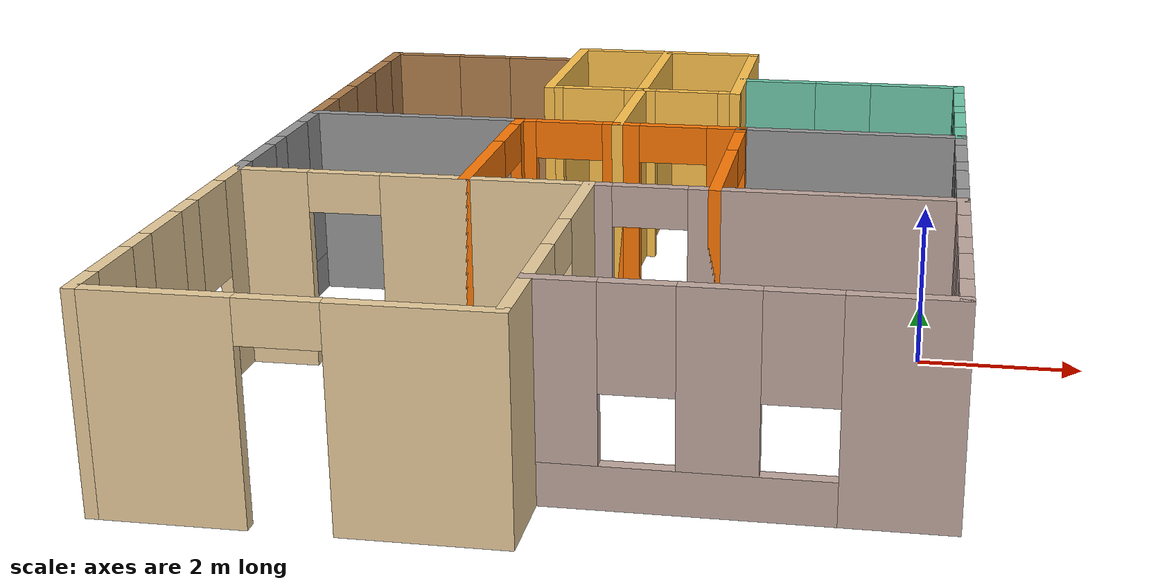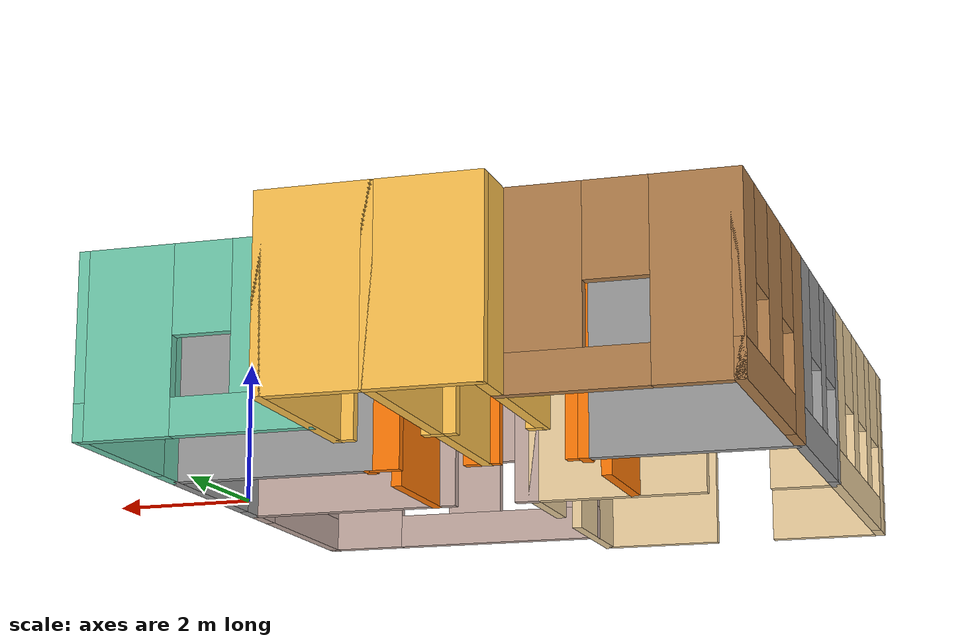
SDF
<?xml version='1.0'?>
<sdf version='1.6'>
  <model name='dd_home_add_door'>
    <pose frame=''>-3.941 0.333 0 0 -0 0</pose>
    <link name='Wall_0'>
      <pose frame=''>-2.175 -5.9 0 0 -0 3.14159</pose>
      <visual name='Wall_0_Visual_0'>
        <pose frame=''>-1.322 0 1.25 0 -0 0</pose>
        <geometry>
          <box>
            <size>1.856 0.15 2.5</size>
          </box>
        </geometry>
        <material>
          <script>
            <uri>file://media/materials/scripts/gazebo.material</uri>
            <name>Gazebo/Grey</name>
          </script>
          <ambient>0.921569 0.807843 0.615686 1</ambient>
        </material>
        <meta>
          <layer>0</layer>
        </meta>
      </visual>
      <collision name='Wall_0_Collision_0'>
        <geometry>
          <box>
            <size>1.856 0.15 2.5</size>
          </box>
        </geometry>
        <pose frame=''>-1.322 0 1.25 0 -0 0</pose>
      </collision>
      <visual name='Wall_0_Visual_1'>
        <pose frame=''>1.378 0 1.25 0 -0 0</pose>
        <geometry>
          <box>
            <size>1.744 0.15 2.5</size>
          </box>
        </geometry>
        <material>
          <script>
            <uri>file://media/materials/scripts/gazebo.material</uri>
            <name>Gazebo/Grey</name>
          </script>
          <ambient>0.921569 0.807843 0.615686 1</ambient>
        </material>
        <meta>
          <layer>0</layer>
        </meta>
      </visual>
      <collision name='Wall_0_Collision_1'>
        <geometry>
          <box>
            <size>1.744 0.15 2.5</size>
          </box>
        </geometry>
        <pose frame=''>1.378 0 1.25 0 -0 0</pose>
      </collision>
      <visual name='Wall_0_Visual_2'>
        <pose frame=''>0.056 0 2.25 0 -0 0</pose>
        <geometry>
          <box>
            <size>0.9 0.15 0.5</size>
          </box>
        </geometry>
        <material>
          <script>
            <uri>file://media/materials/scripts/gazebo.material</uri>
            <name>Gazebo/Grey</name>
          </script>
          <ambient>0.921569 0.807843 0.615686 1</ambient>
        </material>
        <meta>
          <layer>0</layer>
        </meta>
      </visual>
      <collision name='Wall_0_Collision_2'>
        <geometry>
          <box>
            <size>0.9 0.15 0.5</size>
          </box>
        </geometry>
        <pose frame=''>0.056 0 2.25 0 -0 0</pose>
      </collision>
    </link>
    <link name='Wall_1'>
      <pose frame=''>-4.35 -3.725 0 0 -0 1.5708</pose>
      <visual name='Wall_1_Visual_0'>
        <pose frame=''>-1.987 0 1.25 0 -0 0</pose>
        <geometry>
          <box>
            <size>0.526 0.15 2.5</size>
          </box>
        </geometry>
        <material>
          <script>
            <uri>file://media/materials/scripts/gazebo.material</uri>
            <name>Gazebo/Grey</name>
          </script>
          <ambient>0.921569 0.807843 0.615686 1</ambient>
        </material>
        <meta>
          <layer>0</layer>
        </meta>
      </visual>
      <collision name='Wall_1_Collision_0'>
        <geometry>
          <box>
            <size>0.526 0.15 2.5</size>
          </box>
        </geometry>
        <pose frame=''>-1.987 0 1.25 0 -0 0</pose>
      </collision>
      <visual name='Wall_1_Visual_1'>
        <pose frame=''>0.263 0 0.25 0 -0 0</pose>
        <geometry>
          <box>
            <size>3.974 0.15 0.5</size>
          </box>
        </geometry>
        <material>
          <script>
            <uri>file://media/materials/scripts/gazebo.material</uri>
            <name>Gazebo/Grey</name>
          </script>
          <ambient>0.921569 0.807843 0.615686 1</ambient>
        </material>
        <meta>
          <layer>0</layer>
        </meta>
      </visual>
      <collision name='Wall_1_Collision_1'>
        <geometry>
          <box>
            <size>3.974 0.15 0.5</size>
          </box>
        </geometry>
        <pose frame=''>0.263 0 0.25 0 -0 0</pose>
      </collision>
      <visual name='Wall_1_Visual_2'>
        <pose frame=''>-0.6915 0 1.5 0 -0 0</pose>
        <geometry>
          <box>
            <size>0.465 0.15 2</size>
          </box>
        </geometry>
        <material>
          <script>
            <uri>file://media/materials/scripts/gazebo.material</uri>
            <name>Gazebo/Grey</name>
          </script>
          <ambient>0.921569 0.807843 0.615686 1</ambient>
        </material>
        <meta>
          <layer>0</layer>
        </meta>
      </visual>
      <collision name='Wall_1_Collision_2'>
        <geometry>
          <box>
            <size>0.465 0.15 2</size>
          </box>
        </geometry>
        <pose frame=''>-0.6915 0 1.5 0 -0 0</pose>
      </collision>
      <visual name='Wall_1_Visual_3'>
        <pose frame=''>0.5735 0 1.5 0 -0 0</pose>
        <geometry>
          <box>
            <size>0.465 0.15 2</size>
          </box>
        </geometry>
        <material>
          <script>
            <uri>file://media/materials/scripts/gazebo.material</uri>
            <name>Gazebo/Grey</name>
          </script>
          <ambient>0.921569 0.807843 0.615686 1</ambient>
        </material>
        <meta>
          <layer>0</layer>
        </meta>
      </visual>
      <collision name='Wall_1_Collision_3'>
        <geometry>
          <box>
            <size>0.465 0.15 2</size>
          </box>
        </geometry>
        <pose frame=''>0.5735 0 1.5 0 -0 0</pose>
      </collision>
      <visual name='Wall_1_Visual_4'>
        <pose frame=''>1.928 0 1.5 0 -0 0</pose>
        <geometry>
          <box>
            <size>0.644 0.15 2</size>
          </box>
        </geometry>
        <material>
          <script>
            <uri>file://media/materials/scripts/gazebo.material</uri>
            <name>Gazebo/Grey</name>
          </script>
          <ambient>0.921569 0.807843 0.615686 1</ambient>
        </material>
        <meta>
          <layer>0</layer>
        </meta>
      </visual>
      <collision name='Wall_1_Collision_4'>
        <geometry>
          <box>
            <size>0.644 0.15 2</size>
          </box>
        </geometry>
        <pose frame=''>1.928 0 1.5 0 -0 0</pose>
      </collision>
      <visual name='Wall_1_Visual_5'>
        <pose frame=''>-1.324 0 1.9 0 -0 0</pose>
        <geometry>
          <box>
            <size>0.8 0.15 1.2</size>
          </box>
        </geometry>
        <material>
          <script>
            <uri>file://media/materials/scripts/gazebo.material</uri>
            <name>Gazebo/Grey</name>
          </script>
          <ambient>0.921569 0.807843 0.615686 1</ambient>
        </material>
        <meta>
          <layer>0</layer>
        </meta>
      </visual>
      <collision name='Wall_1_Collision_5'>
        <geometry>
          <box>
            <size>0.8 0.15 1.2</size>
          </box>
        </geometry>
        <pose frame=''>-1.324 0 1.9 0 -0 0</pose>
      </collision>
      <visual name='Wall_1_Visual_6'>
        <pose frame=''>-0.059 0 1.9 0 -0 0</pose>
        <geometry>
          <box>
            <size>0.8 0.15 1.2</size>
          </box>
        </geometry>
        <material>
          <script>
            <uri>file://media/materials/scripts/gazebo.material</uri>
            <name>Gazebo/Grey</name>
          </script>
          <ambient>0.921569 0.807843 0.615686 1</ambient>
        </material>
        <meta>
          <layer>0</layer>
        </meta>
      </visual>
      <collision name='Wall_1_Collision_6'>
        <geometry>
          <box>
            <size>0.8 0.15 1.2</size>
          </box>
        </geometry>
        <pose frame=''>-0.059 0 1.9 0 -0 0</pose>
      </collision>
      <visual name='Wall_1_Visual_7'>
        <pose frame=''>1.206 0 1.9 0 -0 0</pose>
        <geometry>
          <box>
            <size>0.8 0.15 1.2</size>
          </box>
        </geometry>
        <material>
          <script>
            <uri>file://media/materials/scripts/gazebo.material</uri>
            <name>Gazebo/Grey</name>
          </script>
          <ambient>0.921569 0.807843 0.615686 1</ambient>
        </material>
        <meta>
          <layer>0</layer>
        </meta>
      </visual>
      <collision name='Wall_1_Collision_7'>
        <geometry>
          <box>
            <size>0.8 0.15 1.2</size>
          </box>
        </geometry>
        <pose frame=''>1.206 0 1.9 0 -0 0</pose>
      </collision>
    </link>
    <link name='Wall_10'>
      <collision name='Wall_10_Collision'>
        <geometry>
          <box>
            <size>3 0.15 2.5</size>
          </box>
        </geometry>
        <pose frame=''>0 0 1.25 0 -0 0</pose>
      </collision>
      <visual name='Wall_10_Visual'>
        <pose frame=''>0 0 1.25 0 -0 0</pose>
        <geometry>
          <box>
            <size>3 0.15 2.5</size>
          </box>
        </geometry>
        <material>
          <script>
            <uri>file://media/materials/scripts/gazebo.material</uri>
            <name>Gazebo/Grey</name>
          </script>
          <ambient>1 1 1 1</ambient>
        </material>
        <meta>
          <layer>0</layer>
        </meta>
      </visual>
      <pose frame=''>2.925 1.3 0 0 -0 3.14159</pose>
    </link>
    <link name='Wall_11'>
      <pose frame=''>1.5 -0.125 0 0 -0 -1.5708</pose>
      <visual name='Wall_11_Visual_0'>
        <pose frame=''>-1.365 0 1.25 0 -0 0</pose>
        <geometry>
          <box>
            <size>0.27 0.15 2.5</size>
          </box>
        </geometry>
        <material>
          <script>
            <uri>file://media/materials/scripts/gazebo.material</uri>
            <name>Gazebo/Grey</name>
          </script>
          <ambient>0.996078 0.47451 0.0196078 1</ambient>
        </material>
        <meta>
          <layer>0</layer>
        </meta>
      </visual>
      <collision name='Wall_11_Collision_0'>
        <geometry>
          <box>
            <size>0.27 0.15 2.5</size>
          </box>
        </geometry>
        <pose frame=''>-1.365 0 1.25 0 -0 0</pose>
      </collision>
      <visual name='Wall_11_Visual_1'>
        <pose frame=''>0.585 0 1.25 0 -0 0</pose>
        <geometry>
          <box>
            <size>1.83 0.15 2.5</size>
          </box>
        </geometry>
        <material>
          <script>
            <uri>file://media/materials/scripts/gazebo.material</uri>
            <name>Gazebo/Grey</name>
          </script>
          <ambient>0.996078 0.47451 0.0196078 1</ambient>
        </material>
        <meta>
          <layer>0</layer>
        </meta>
      </visual>
      <collision name='Wall_11_Collision_1'>
        <geometry>
          <box>
            <size>1.83 0.15 2.5</size>
          </box>
        </geometry>
        <pose frame=''>0.585 0 1.25 0 -0 0</pose>
      </collision>
      <visual name='Wall_11_Visual_2'>
        <pose frame=''>-0.78 0 2.25 0 -0 0</pose>
        <geometry>
          <box>
            <size>0.9 0.15 0.5</size>
          </box>
        </geometry>
        <material>
          <script>
            <uri>file://media/materials/scripts/gazebo.material</uri>
            <name>Gazebo/Grey</name>
          </script>
          <ambient>0.996078 0.47451 0.0196078 1</ambient>
        </material>
        <meta>
          <layer>0</layer>
        </meta>
      </visual>
      <collision name='Wall_11_Collision_2'>
        <geometry>
          <box>
            <size>0.9 0.15 0.5</size>
          </box>
        </geometry>
        <pose frame=''>-0.78 0 2.25 0 -0 0</pose>
      </collision>
    </link>
    <link name='Wall_13'>
      <pose frame=''>-4.35 -0.125 0 0 -0 1.5708</pose>
      <visual name='Wall_13_Visual_0'>
        <pose frame=''>-1.3075 0 1.25 0 -0 0</pose>
        <geometry>
          <box>
            <size>0.385 0.15 2.5</size>
          </box>
        </geometry>
        <material>
          <script>
            <uri>file://media/materials/scripts/gazebo.material</uri>
            <name>Gazebo/Grey</name>
          </script>
          <ambient>1 1 1 1</ambient>
        </material>
        <meta>
          <layer>0</layer>
        </meta>
      </visual>
      <collision name='Wall_13_Collision_0'>
        <geometry>
          <box>
            <size>0.385 0.15 2.5</size>
          </box>
        </geometry>
        <pose frame=''>-1.3075 0 1.25 0 -0 0</pose>
      </collision>
      <visual name='Wall_13_Visual_1'>
        <pose frame=''>0.1925 0 0.25 0 -0 0</pose>
        <geometry>
          <box>
            <size>2.615 0.15 0.5</size>
          </box>
        </geometry>
        <material>
          <script>
            <uri>file://media/materials/scripts/gazebo.material</uri>
            <name>Gazebo/Grey</name>
          </script>
          <ambient>1 1 1 1</ambient>
        </material>
        <meta>
          <layer>0</layer>
        </meta>
      </visual>
      <collision name='Wall_13_Collision_1'>
        <geometry>
          <box>
            <size>2.615 0.15 0.5</size>
          </box>
        </geometry>
        <pose frame=''>0.1925 0 0.25 0 -0 0</pose>
      </collision>
      <visual name='Wall_13_Visual_2'>
        <pose frame=''>-0.117 0 1.5 0 -0 0</pose>
        <geometry>
          <box>
            <size>0.396 0.15 2</size>
          </box>
        </geometry>
        <material>
          <script>
            <uri>file://media/materials/scripts/gazebo.material</uri>
            <name>Gazebo/Grey</name>
          </script>
          <ambient>1 1 1 1</ambient>
        </material>
        <meta>
          <layer>0</layer>
        </meta>
      </visual>
      <collision name='Wall_13_Collision_2'>
        <geometry>
          <box>
            <size>0.396 0.15 2</size>
          </box>
        </geometry>
        <pose frame=''>-0.117 0 1.5 0 -0 0</pose>
      </collision>
      <visual name='Wall_13_Visual_3'>
        <pose frame=''>1.1905 0 1.5 0 -0 0</pose>
        <geometry>
          <box>
            <size>0.619 0.15 2</size>
          </box>
        </geometry>
        <material>
          <script>
            <uri>file://media/materials/scripts/gazebo.material</uri>
            <name>Gazebo/Grey</name>
          </script>
          <ambient>1 1 1 1</ambient>
        </material>
        <meta>
          <layer>0</layer>
        </meta>
      </visual>
      <collision name='Wall_13_Collision_3'>
        <geometry>
          <box>
            <size>0.619 0.15 2</size>
          </box>
        </geometry>
        <pose frame=''>1.1905 0 1.5 0 -0 0</pose>
      </collision>
      <visual name='Wall_13_Visual_4'>
        <pose frame=''>-0.715 0 1.9 0 -0 0</pose>
        <geometry>
          <box>
            <size>0.8 0.15 1.2</size>
          </box>
        </geometry>
        <material>
          <script>
            <uri>file://media/materials/scripts/gazebo.material</uri>
            <name>Gazebo/Grey</name>
          </script>
          <ambient>1 1 1 1</ambient>
        </material>
        <meta>
          <layer>0</layer>
        </meta>
      </visual>
      <collision name='Wall_13_Collision_4'>
        <geometry>
          <box>
            <size>0.8 0.15 1.2</size>
          </box>
        </geometry>
        <pose frame=''>-0.715 0 1.9 0 -0 0</pose>
      </collision>
      <visual name='Wall_13_Visual_5'>
        <pose frame=''>0.481 0 1.9 0 -0 0</pose>
        <geometry>
          <box>
            <size>0.8 0.15 1.2</size>
          </box>
        </geometry>
        <material>
          <script>
            <uri>file://media/materials/scripts/gazebo.material</uri>
            <name>Gazebo/Grey</name>
          </script>
          <ambient>1 1 1 1</ambient>
        </material>
        <meta>
          <layer>0</layer>
        </meta>
      </visual>
      <collision name='Wall_13_Collision_5'>
        <geometry>
          <box>
            <size>0.8 0.15 1.2</size>
          </box>
        </geometry>
        <pose frame=''>0.481 0 1.9 0 -0 0</pose>
      </collision>
    </link>
    <link name='Wall_14'>
      <collision name='Wall_14_Collision'>
        <geometry>
          <box>
            <size>3 0.15 2.5</size>
          </box>
        </geometry>
        <pose frame=''>0 0 1.25 0 -0 0</pose>
      </collision>
      <visual name='Wall_14_Visual'>
        <pose frame=''>0 0 1.25 0 -0 0</pose>
        <geometry>
          <box>
            <size>3 0.15 2.5</size>
          </box>
        </geometry>
        <material>
          <script>
            <uri>file://media/materials/scripts/gazebo.material</uri>
            <name>Gazebo/Grey</name>
          </script>
          <ambient>1 1 1 1</ambient>
        </material>
        <meta>
          <layer>0</layer>
        </meta>
      </visual>
      <pose frame=''>-2.925 1.3 0 0 -0 0</pose>
    </link>
    <link name='Wall_15'>
      <pose frame=''>-1.5 -0.125 0 0 -0 -1.5708</pose>
      <visual name='Wall_15_Visual_0'>
        <pose frame=''>-1.342 0 1.25 0 -0 0</pose>
        <geometry>
          <box>
            <size>0.316 0.15 2.5</size>
          </box>
        </geometry>
        <material>
          <script>
            <uri>file://media/materials/scripts/gazebo.material</uri>
            <name>Gazebo/Grey</name>
          </script>
          <ambient>0.996078 0.47451 0.0196078 1</ambient>
        </material>
        <meta>
          <layer>0</layer>
        </meta>
      </visual>
      <collision name='Wall_15_Collision_0'>
        <geometry>
          <box>
            <size>0.316 0.15 2.5</size>
          </box>
        </geometry>
        <pose frame=''>-1.342 0 1.25 0 -0 0</pose>
      </collision>
      <visual name='Wall_15_Visual_1'>
        <pose frame=''>0.608 0 1.25 0 -0 0</pose>
        <geometry>
          <box>
            <size>1.784 0.15 2.5</size>
          </box>
        </geometry>
        <material>
          <script>
            <uri>file://media/materials/scripts/gazebo.material</uri>
            <name>Gazebo/Grey</name>
          </script>
          <ambient>0.996078 0.47451 0.0196078 1</ambient>
        </material>
        <meta>
          <layer>0</layer>
        </meta>
      </visual>
      <collision name='Wall_15_Collision_1'>
        <geometry>
          <box>
            <size>1.784 0.15 2.5</size>
          </box>
        </geometry>
        <pose frame=''>0.608 0 1.25 0 -0 0</pose>
      </collision>
      <visual name='Wall_15_Visual_2'>
        <pose frame=''>-0.734 0 2.25 0 -0 0</pose>
        <geometry>
          <box>
            <size>0.9 0.15 0.5</size>
          </box>
        </geometry>
        <material>
          <script>
            <uri>file://media/materials/scripts/gazebo.material</uri>
            <name>Gazebo/Grey</name>
          </script>
          <ambient>0.996078 0.47451 0.0196078 1</ambient>
        </material>
        <meta>
          <layer>0</layer>
        </meta>
      </visual>
      <collision name='Wall_15_Collision_2'>
        <geometry>
          <box>
            <size>0.9 0.15 0.5</size>
          </box>
        </geometry>
        <pose frame=''>-0.734 0 2.25 0 -0 0</pose>
      </collision>
    </link>
    <link name='Wall_17'>
      <pose frame=''>-0.825 1.3 0 0 -0 0</pose>
      <visual name='Wall_17_Visual_0'>
        <pose frame=''>-0.59 0 1.25 0 -0 0</pose>
        <geometry>
          <box>
            <size>0.32 0.15 2.5</size>
          </box>
        </geometry>
        <material>
          <script>
            <uri>file://media/materials/scripts/gazebo.material</uri>
            <name>Gazebo/Grey</name>
          </script>
          <ambient>0.996078 0.47451 0.0196078 1</ambient>
        </material>
        <meta>
          <layer>0</layer>
        </meta>
      </visual>
      <collision name='Wall_17_Collision_0'>
        <geometry>
          <box>
            <size>0.32 0.15 2.5</size>
          </box>
        </geometry>
        <pose frame=''>-0.59 0 1.25 0 -0 0</pose>
      </collision>
      <visual name='Wall_17_Visual_1'>
        <pose frame=''>0.61 0 1.25 0 -0 0</pose>
        <geometry>
          <box>
            <size>0.28 0.15 2.5</size>
          </box>
        </geometry>
        <material>
          <script>
            <uri>file://media/materials/scripts/gazebo.material</uri>
            <name>Gazebo/Grey</name>
          </script>
          <ambient>0.996078 0.47451 0.0196078 1</ambient>
        </material>
        <meta>
          <layer>0</layer>
        </meta>
      </visual>
      <collision name='Wall_17_Collision_1'>
        <geometry>
          <box>
            <size>0.28 0.15 2.5</size>
          </box>
        </geometry>
        <pose frame=''>0.61 0 1.25 0 -0 0</pose>
      </collision>
      <visual name='Wall_17_Visual_2'>
        <pose frame=''>0.02 0 2.25 0 -0 0</pose>
        <geometry>
          <box>
            <size>0.9 0.15 0.5</size>
          </box>
        </geometry>
        <material>
          <script>
            <uri>file://media/materials/scripts/gazebo.material</uri>
            <name>Gazebo/Grey</name>
          </script>
          <ambient>0.996078 0.47451 0.0196078 1</ambient>
        </material>
        <meta>
          <layer>0</layer>
        </meta>
      </visual>
      <collision name='Wall_17_Collision_2'>
        <geometry>
          <box>
            <size>0.9 0.15 0.5</size>
          </box>
        </geometry>
        <pose frame=''>0.02 0 2.25 0 -0 0</pose>
      </collision>
    </link>
    <link name='Wall_18'>
      <collision name='Wall_18_Collision'>
        <geometry>
          <box>
            <size>4.75 0.15 2.5</size>
          </box>
        </geometry>
        <pose frame=''>0 0 1.25 0 -0 0</pose>
      </collision>
      <visual name='Wall_18_Visual'>
        <pose frame=''>0 0 1.25 0 -0 0</pose>
        <geometry>
          <box>
            <size>4.75 0.15 2.5</size>
          </box>
        </geometry>
        <material>
          <script>
            <uri>file://media/materials/scripts/gazebo.material</uri>
            <name>Gazebo/Grey</name>
          </script>
          <ambient>1 0.764706 0.305882 1</ambient>
        </material>
        <meta>
          <layer>0</layer>
        </meta>
      </visual>
      <pose frame=''>-0.15 3.6 0 0 -0 1.5708</pose>
    </link>
    <link name='Wall_19'>
      <collision name='Wall_19_Collision'>
        <geometry>
          <box>
            <size>1.5 0.15 2.5</size>
          </box>
        </geometry>
        <pose frame=''>0 0 1.25 0 -0 0</pose>
      </collision>
      <visual name='Wall_19_Visual'>
        <pose frame=''>0 0 1.25 0 -0 0</pose>
        <geometry>
          <box>
            <size>1.5 0.15 2.5</size>
          </box>
        </geometry>
        <material>
          <script>
            <uri>file://media/materials/scripts/gazebo.material</uri>
            <name>Gazebo/Grey</name>
          </script>
          <ambient>1 0.764706 0.305882 1</ambient>
        </material>
        <meta>
          <layer>0</layer>
        </meta>
      </visual>
      <pose frame=''>-0.825 5.9 0 0 -0 3.14159</pose>
    </link>
    <link name='Wall_2'>
      <pose frame=''>-2.175 -1.55 0 0 -0 0</pose>
      <visual name='Wall_2_Visual_0'>
        <pose frame=''>-1.7575 0 1.25 0 -0 0</pose>
        <geometry>
          <box>
            <size>0.985 0.15 2.5</size>
          </box>
        </geometry>
        <material>
          <script>
            <uri>file://media/materials/scripts/gazebo.material</uri>
            <name>Gazebo/Grey</name>
          </script>
          <ambient>0.921569 0.807843 0.615686 1</ambient>
        </material>
        <meta>
          <layer>0</layer>
        </meta>
      </visual>
      <collision name='Wall_2_Collision_0'>
        <geometry>
          <box>
            <size>0.985 0.15 2.5</size>
          </box>
        </geometry>
        <pose frame=''>-1.7575 0 1.25 0 -0 0</pose>
      </collision>
      <visual name='Wall_2_Visual_1'>
        <pose frame=''>0.9425 0 1.25 0 -0 0</pose>
        <geometry>
          <box>
            <size>2.615 0.15 2.5</size>
          </box>
        </geometry>
        <material>
          <script>
            <uri>file://media/materials/scripts/gazebo.material</uri>
            <name>Gazebo/Grey</name>
          </script>
          <ambient>0.921569 0.807843 0.615686 1</ambient>
        </material>
        <meta>
          <layer>0</layer>
        </meta>
      </visual>
      <collision name='Wall_2_Collision_1'>
        <geometry>
          <box>
            <size>2.615 0.15 2.5</size>
          </box>
        </geometry>
        <pose frame=''>0.9425 0 1.25 0 -0 0</pose>
      </collision>
      <visual name='Wall_2_Visual_2'>
        <pose frame=''>-0.815 0 2.25 0 -0 0</pose>
        <geometry>
          <box>
            <size>0.9 0.15 0.5</size>
          </box>
        </geometry>
        <material>
          <script>
            <uri>file://media/materials/scripts/gazebo.material</uri>
            <name>Gazebo/Grey</name>
          </script>
          <ambient>0.921569 0.807843 0.615686 1</ambient>
        </material>
        <meta>
          <layer>0</layer>
        </meta>
      </visual>
      <collision name='Wall_2_Collision_2'>
        <geometry>
          <box>
            <size>0.9 0.15 0.5</size>
          </box>
        </geometry>
        <pose frame=''>-0.815 0 2.25 0 -0 0</pose>
      </collision>
    </link>
    <link name='Wall_20'>
      <collision name='Wall_20_Collision'>
        <geometry>
          <box>
            <size>2.75 0.15 2.5</size>
          </box>
        </geometry>
        <pose frame=''>0 0 1.25 0 -0 0</pose>
      </collision>
      <visual name='Wall_20_Visual'>
        <pose frame=''>0 0 1.25 0 -0 0</pose>
        <geometry>
          <box>
            <size>2.75 0.15 2.5</size>
          </box>
        </geometry>
        <material>
          <script>
            <uri>file://media/materials/scripts/gazebo.material</uri>
            <name>Gazebo/Grey</name>
          </script>
          <ambient>1 0.764706 0.305882 1</ambient>
        </material>
        <meta>
          <layer>0</layer>
        </meta>
      </visual>
      <pose frame=''>-1.5 4.6 0 0 -0 -1.5708</pose>
    </link>
    <link name='Wall_21'>
      <pose frame=''>-0.825 3.3 0 0 -0 0</pose>
      <visual name='Wall_21_Visual_0'>
        <pose frame=''>-0.613 0 1.25 0 -0 0</pose>
        <geometry>
          <box>
            <size>0.274 0.15 2.5</size>
          </box>
        </geometry>
        <material>
          <script>
            <uri>file://media/materials/scripts/gazebo.material</uri>
            <name>Gazebo/Grey</name>
          </script>
          <ambient>1 0.764706 0.305882 1</ambient>
        </material>
        <meta>
          <layer>0</layer>
        </meta>
      </visual>
      <collision name='Wall_21_Collision_0'>
        <geometry>
          <box>
            <size>0.274 0.15 2.5</size>
          </box>
        </geometry>
        <pose frame=''>-0.613 0 1.25 0 -0 0</pose>
      </collision>
      <visual name='Wall_21_Visual_1'>
        <pose frame=''>0.587 0 1.25 0 -0 0</pose>
        <geometry>
          <box>
            <size>0.326 0.15 2.5</size>
          </box>
        </geometry>
        <material>
          <script>
            <uri>file://media/materials/scripts/gazebo.material</uri>
            <name>Gazebo/Grey</name>
          </script>
          <ambient>1 0.764706 0.305882 1</ambient>
        </material>
        <meta>
          <layer>0</layer>
        </meta>
      </visual>
      <collision name='Wall_21_Collision_1'>
        <geometry>
          <box>
            <size>0.326 0.15 2.5</size>
          </box>
        </geometry>
        <pose frame=''>0.587 0 1.25 0 -0 0</pose>
      </collision>
      <visual name='Wall_21_Visual_2'>
        <pose frame=''>-0.026 0 2.25 0 -0 0</pose>
        <geometry>
          <box>
            <size>0.9 0.15 0.5</size>
          </box>
        </geometry>
        <material>
          <script>
            <uri>file://media/materials/scripts/gazebo.material</uri>
            <name>Gazebo/Grey</name>
          </script>
          <ambient>1 0.764706 0.305882 1</ambient>
        </material>
        <meta>
          <layer>0</layer>
        </meta>
      </visual>
      <collision name='Wall_21_Collision_2'>
        <geometry>
          <box>
            <size>0.9 0.15 0.5</size>
          </box>
        </geometry>
        <pose frame=''>-0.026 0 2.25 0 -0 0</pose>
      </collision>
    </link>
    <link name='Wall_23'>
      <pose frame=''>-4.35 3.225 0 0 -0 1.5708</pose>
      <visual name='Wall_23_Visual_0'>
        <pose frame=''>-1.5765 0 1.25 0 -0 0</pose>
        <geometry>
          <box>
            <size>0.847 0.15 2.5</size>
          </box>
        </geometry>
        <material>
          <script>
            <uri>file://media/materials/scripts/gazebo.material</uri>
            <name>Gazebo/Wood</name>
          </script>
          <ambient>1 1 1 1</ambient>
        </material>
        <meta>
          <layer>0</layer>
        </meta>
      </visual>
      <collision name='Wall_23_Collision_0'>
        <geometry>
          <box>
            <size>0.847 0.15 2.5</size>
          </box>
        </geometry>
        <pose frame=''>-1.5765 0 1.25 0 -0 0</pose>
      </collision>
      <visual name='Wall_23_Visual_1'>
        <pose frame=''>0.4235 0 0.25 0 -0 0</pose>
        <geometry>
          <box>
            <size>3.153 0.15 0.5</size>
          </box>
        </geometry>
        <material>
          <script>
            <uri>file://media/materials/scripts/gazebo.material</uri>
            <name>Gazebo/Wood</name>
          </script>
          <ambient>1 1 1 1</ambient>
        </material>
        <meta>
          <layer>0</layer>
        </meta>
      </visual>
      <collision name='Wall_23_Collision_1'>
        <geometry>
          <box>
            <size>3.153 0.15 0.5</size>
          </box>
        </geometry>
        <pose frame=''>0.4235 0 0.25 0 -0 0</pose>
      </collision>
      <visual name='Wall_23_Visual_2'>
        <pose frame=''>0.0865 0 1.5 0 -0 0</pose>
        <geometry>
          <box>
            <size>0.879 0.15 2</size>
          </box>
        </geometry>
        <material>
          <script>
            <uri>file://media/materials/scripts/gazebo.material</uri>
            <name>Gazebo/Wood</name>
          </script>
          <ambient>1 1 1 1</ambient>
        </material>
        <meta>
          <layer>0</layer>
        </meta>
      </visual>
      <collision name='Wall_23_Collision_2'>
        <geometry>
          <box>
            <size>0.879 0.15 2</size>
          </box>
        </geometry>
        <pose frame=''>0.0865 0 1.5 0 -0 0</pose>
      </collision>
      <visual name='Wall_23_Visual_3'>
        <pose frame=''>1.663 0 1.5 0 -0 0</pose>
        <geometry>
          <box>
            <size>0.674 0.15 2</size>
          </box>
        </geometry>
        <material>
          <script>
            <uri>file://media/materials/scripts/gazebo.material</uri>
            <name>Gazebo/Wood</name>
          </script>
          <ambient>1 1 1 1</ambient>
        </material>
        <meta>
          <layer>0</layer>
        </meta>
      </visual>
      <collision name='Wall_23_Collision_3'>
        <geometry>
          <box>
            <size>0.674 0.15 2</size>
          </box>
        </geometry>
        <pose frame=''>1.663 0 1.5 0 -0 0</pose>
      </collision>
      <visual name='Wall_23_Visual_4'>
        <pose frame=''>-0.753 0 1.9 0 -0 0</pose>
        <geometry>
          <box>
            <size>0.8 0.15 1.2</size>
          </box>
        </geometry>
        <material>
          <script>
            <uri>file://media/materials/scripts/gazebo.material</uri>
            <name>Gazebo/Wood</name>
          </script>
          <ambient>1 1 1 1</ambient>
        </material>
        <meta>
          <layer>0</layer>
        </meta>
      </visual>
      <collision name='Wall_23_Collision_4'>
        <geometry>
          <box>
            <size>0.8 0.15 1.2</size>
          </box>
        </geometry>
        <pose frame=''>-0.753 0 1.9 0 -0 0</pose>
      </collision>
      <visual name='Wall_23_Visual_5'>
        <pose frame=''>0.926 0 1.9 0 -0 0</pose>
        <geometry>
          <box>
            <size>0.8 0.15 1.2</size>
          </box>
        </geometry>
        <material>
          <script>
            <uri>file://media/materials/scripts/gazebo.material</uri>
            <name>Gazebo/Wood</name>
          </script>
          <ambient>1 1 1 1</ambient>
        </material>
        <meta>
          <layer>0</layer>
        </meta>
      </visual>
      <collision name='Wall_23_Collision_5'>
        <geometry>
          <box>
            <size>0.8 0.15 1.2</size>
          </box>
        </geometry>
        <pose frame=''>0.926 0 1.9 0 -0 0</pose>
      </collision>
    </link>
    <link name='Wall_24'>
      <pose frame=''>-2.925 5.15 0 0 -0 0</pose>
      <visual name='Wall_24_Visual_0'>
        <pose frame=''>-0.948 0 1.25 0 -0 0</pose>
        <geometry>
          <box>
            <size>1.104 0.15 2.5</size>
          </box>
        </geometry>
        <material>
          <script>
            <uri>file://media/materials/scripts/gazebo.material</uri>
            <name>Gazebo/Wood</name>
          </script>
          <ambient>1 1 1 1</ambient>
        </material>
        <meta>
          <layer>0</layer>
        </meta>
      </visual>
      <collision name='Wall_24_Collision_0'>
        <geometry>
          <box>
            <size>1.104 0.15 2.5</size>
          </box>
        </geometry>
        <pose frame=''>-0.948 0 1.25 0 -0 0</pose>
      </collision>
      <visual name='Wall_24_Visual_1'>
        <pose frame=''>0.552 0 0.25 0 -0 0</pose>
        <geometry>
          <box>
            <size>1.896 0.15 0.5</size>
          </box>
        </geometry>
        <material>
          <script>
            <uri>file://media/materials/scripts/gazebo.material</uri>
            <name>Gazebo/Wood</name>
          </script>
          <ambient>1 1 1 1</ambient>
        </material>
        <meta>
          <layer>0</layer>
        </meta>
      </visual>
      <collision name='Wall_24_Collision_1'>
        <geometry>
          <box>
            <size>1.896 0.15 0.5</size>
          </box>
        </geometry>
        <pose frame=''>0.552 0 0.25 0 -0 0</pose>
      </collision>
      <visual name='Wall_24_Visual_2'>
        <pose frame=''>0.952 0 1.5 0 -0 0</pose>
        <geometry>
          <box>
            <size>1.096 0.15 2</size>
          </box>
        </geometry>
        <material>
          <script>
            <uri>file://media/materials/scripts/gazebo.material</uri>
            <name>Gazebo/Wood</name>
          </script>
          <ambient>1 1 1 1</ambient>
        </material>
        <meta>
          <layer>0</layer>
        </meta>
      </visual>
      <collision name='Wall_24_Collision_2'>
        <geometry>
          <box>
            <size>1.096 0.15 2</size>
          </box>
        </geometry>
        <pose frame=''>0.952 0 1.5 0 -0 0</pose>
      </collision>
      <visual name='Wall_24_Visual_3'>
        <pose frame=''>0.004 0 1.9 0 -0 0</pose>
        <geometry>
          <box>
            <size>0.8 0.15 1.2</size>
          </box>
        </geometry>
        <material>
          <script>
            <uri>file://media/materials/scripts/gazebo.material</uri>
            <name>Gazebo/Wood</name>
          </script>
          <ambient>1 1 1 1</ambient>
        </material>
        <meta>
          <layer>0</layer>
        </meta>
      </visual>
      <collision name='Wall_24_Collision_3'>
        <geometry>
          <box>
            <size>0.8 0.15 1.2</size>
          </box>
        </geometry>
        <pose frame=''>0.004 0 1.9 0 -0 0</pose>
      </collision>
    </link>
    <link name='Wall_26'>
      <pose frame=''>0.675 1.3 0 0 -0 3.14159</pose>
      <visual name='Wall_26_Visual_0'>
        <pose frame=''>-0.6365 0 1.25 0 -0 0</pose>
        <geometry>
          <box>
            <size>0.527 0.15 2.5</size>
          </box>
        </geometry>
        <material>
          <script>
            <uri>file://media/materials/scripts/gazebo.material</uri>
            <name>Gazebo/Grey</name>
          </script>
          <ambient>0.996078 0.47451 0.0196078 1</ambient>
        </material>
        <meta>
          <layer>0</layer>
        </meta>
      </visual>
      <collision name='Wall_26_Collision_0'>
        <geometry>
          <box>
            <size>0.527 0.15 2.5</size>
          </box>
        </geometry>
        <pose frame=''>-0.6365 0 1.25 0 -0 0</pose>
      </collision>
      <visual name='Wall_26_Visual_1'>
        <pose frame=''>0.7135 0 1.25 0 -0 0</pose>
        <geometry>
          <box>
            <size>0.373 0.15 2.5</size>
          </box>
        </geometry>
        <material>
          <script>
            <uri>file://media/materials/scripts/gazebo.material</uri>
            <name>Gazebo/Grey</name>
          </script>
          <ambient>0.996078 0.47451 0.0196078 1</ambient>
        </material>
        <meta>
          <layer>0</layer>
        </meta>
      </visual>
      <collision name='Wall_26_Collision_1'>
        <geometry>
          <box>
            <size>0.373 0.15 2.5</size>
          </box>
        </geometry>
        <pose frame=''>0.7135 0 1.25 0 -0 0</pose>
      </collision>
      <visual name='Wall_26_Visual_2'>
        <pose frame=''>0.077 0 2.25 0 -0 0</pose>
        <geometry>
          <box>
            <size>0.9 0.15 0.5</size>
          </box>
        </geometry>
        <material>
          <script>
            <uri>file://media/materials/scripts/gazebo.material</uri>
            <name>Gazebo/Grey</name>
          </script>
          <ambient>0.996078 0.47451 0.0196078 1</ambient>
        </material>
        <meta>
          <layer>0</layer>
        </meta>
      </visual>
      <collision name='Wall_26_Collision_2'>
        <geometry>
          <box>
            <size>0.9 0.15 0.5</size>
          </box>
        </geometry>
        <pose frame=''>0.077 0 2.25 0 -0 0</pose>
      </collision>
    </link>
    <link name='Wall_28'>
      <collision name='Wall_28_Collision'>
        <geometry>
          <box>
            <size>1.5 0.15 2.5</size>
          </box>
        </geometry>
        <pose frame=''>0 0 1.25 0 -0 0</pose>
      </collision>
      <visual name='Wall_28_Visual'>
        <pose frame=''>0 0 1.25 0 -0 0</pose>
        <geometry>
          <box>
            <size>1.5 0.15 2.5</size>
          </box>
        </geometry>
        <material>
          <script>
            <uri>file://media/materials/scripts/gazebo.material</uri>
            <name>Gazebo/Grey</name>
          </script>
          <ambient>1 0.764706 0.305882 1</ambient>
        </material>
        <meta>
          <layer>0</layer>
        </meta>
      </visual>
      <pose frame=''>0.525 5.9 0 0 -0 0</pose>
    </link>
    <link name='Wall_29'>
      <collision name='Wall_29_Collision'>
        <geometry>
          <box>
            <size>2.75 0.15 2.5</size>
          </box>
        </geometry>
        <pose frame=''>0 0 1.25 0 -0 0</pose>
      </collision>
      <visual name='Wall_29_Visual'>
        <pose frame=''>0 0 1.25 0 -0 0</pose>
        <geometry>
          <box>
            <size>2.75 0.15 2.5</size>
          </box>
        </geometry>
        <material>
          <script>
            <uri>file://media/materials/scripts/gazebo.material</uri>
            <name>Gazebo/Grey</name>
          </script>
          <ambient>1 0.764706 0.305882 1</ambient>
        </material>
        <meta>
          <layer>0</layer>
        </meta>
      </visual>
      <pose frame=''>1.2 4.6 0 0 -0 -1.5708</pose>
    </link>
    <link name='Wall_30'>
      <pose frame=''>0.525 3.3 0 0 -0 -3.14159</pose>
      <visual name='Wall_30_Visual_0'>
        <pose frame=''>-0.5905 0 1.25 0 -0 0</pose>
        <geometry>
          <box>
            <size>0.319 0.15 2.5</size>
          </box>
        </geometry>
        <material>
          <script>
            <uri>file://media/materials/scripts/gazebo.material</uri>
            <name>Gazebo/Grey</name>
          </script>
          <ambient>1 0.764706 0.305882 1</ambient>
        </material>
        <meta>
          <layer>0</layer>
        </meta>
      </visual>
      <collision name='Wall_30_Collision_0'>
        <geometry>
          <box>
            <size>0.319 0.15 2.5</size>
          </box>
        </geometry>
        <pose frame=''>-0.5905 0 1.25 0 -0 0</pose>
      </collision>
      <visual name='Wall_30_Visual_1'>
        <pose frame=''>0.6095 0 1.25 0 -0 0</pose>
        <geometry>
          <box>
            <size>0.281 0.15 2.5</size>
          </box>
        </geometry>
        <material>
          <script>
            <uri>file://media/materials/scripts/gazebo.material</uri>
            <name>Gazebo/Grey</name>
          </script>
          <ambient>1 0.764706 0.305882 1</ambient>
        </material>
        <meta>
          <layer>0</layer>
        </meta>
      </visual>
      <collision name='Wall_30_Collision_1'>
        <geometry>
          <box>
            <size>0.281 0.15 2.5</size>
          </box>
        </geometry>
        <pose frame=''>0.6095 0 1.25 0 -0 0</pose>
      </collision>
      <visual name='Wall_30_Visual_2'>
        <pose frame=''>0.019 0 2.25 0 -0 0</pose>
        <geometry>
          <box>
            <size>0.9 0.15 0.5</size>
          </box>
        </geometry>
        <material>
          <script>
            <uri>file://media/materials/scripts/gazebo.material</uri>
            <name>Gazebo/Grey</name>
          </script>
          <ambient>1 0.764706 0.305882 1</ambient>
        </material>
        <meta>
          <layer>0</layer>
        </meta>
      </visual>
      <collision name='Wall_30_Collision_2'>
        <geometry>
          <box>
            <size>0.9 0.15 0.5</size>
          </box>
        </geometry>
        <pose frame=''>0.019 0 2.25 0 -0 0</pose>
      </collision>
    </link>
    <link name='Wall_32'>
      <pose frame=''>4.35 2.725 0 0 -0 1.5708</pose>
      <visual name='Wall_32_Visual_0'>
        <pose frame=''>-1.203 0 1.25 0 -0 0</pose>
        <geometry>
          <box>
            <size>0.594 0.15 2.5</size>
          </box>
        </geometry>
        <material>
          <script>
            <uri>file://media/materials/scripts/gazebo.material</uri>
            <name>Gazebo/Grey</name>
          </script>
          <ambient>0.435294 0.796078 0.67451 1</ambient>
        </material>
        <meta>
          <layer>0</layer>
        </meta>
      </visual>
      <collision name='Wall_32_Collision_0'>
        <geometry>
          <box>
            <size>0.594 0.15 2.5</size>
          </box>
        </geometry>
        <pose frame=''>-1.203 0 1.25 0 -0 0</pose>
      </collision>
      <visual name='Wall_32_Visual_1'>
        <pose frame=''>0.297 0 0.25 0 -0 0</pose>
        <geometry>
          <box>
            <size>2.406 0.15 0.5</size>
          </box>
        </geometry>
        <material>
          <script>
            <uri>file://media/materials/scripts/gazebo.material</uri>
            <name>Gazebo/Grey</name>
          </script>
          <ambient>0.435294 0.796078 0.67451 1</ambient>
        </material>
        <meta>
          <layer>0</layer>
        </meta>
      </visual>
      <collision name='Wall_32_Collision_1'>
        <geometry>
          <box>
            <size>2.406 0.15 0.5</size>
          </box>
        </geometry>
        <pose frame=''>0.297 0 0.25 0 -0 0</pose>
      </collision>
      <visual name='Wall_32_Visual_2'>
        <pose frame=''>0.0805 0 1.5 0 -0 0</pose>
        <geometry>
          <box>
            <size>0.373 0.15 2</size>
          </box>
        </geometry>
        <material>
          <script>
            <uri>file://media/materials/scripts/gazebo.material</uri>
            <name>Gazebo/Grey</name>
          </script>
          <ambient>0.435294 0.796078 0.67451 1</ambient>
        </material>
        <meta>
          <layer>0</layer>
        </meta>
      </visual>
      <collision name='Wall_32_Collision_2'>
        <geometry>
          <box>
            <size>0.373 0.15 2</size>
          </box>
        </geometry>
        <pose frame=''>0.0805 0 1.5 0 -0 0</pose>
      </collision>
      <visual name='Wall_32_Visual_3'>
        <pose frame=''>1.2835 0 1.5 0 -0 0</pose>
        <geometry>
          <box>
            <size>0.433 0.15 2</size>
          </box>
        </geometry>
        <material>
          <script>
            <uri>file://media/materials/scripts/gazebo.material</uri>
            <name>Gazebo/Grey</name>
          </script>
          <ambient>0.435294 0.796078 0.67451 1</ambient>
        </material>
        <meta>
          <layer>0</layer>
        </meta>
      </visual>
      <collision name='Wall_32_Collision_3'>
        <geometry>
          <box>
            <size>0.433 0.15 2</size>
          </box>
        </geometry>
        <pose frame=''>1.2835 0 1.5 0 -0 0</pose>
      </collision>
      <visual name='Wall_32_Visual_4'>
        <pose frame=''>-0.506 0 1.9 0 -0 0</pose>
        <geometry>
          <box>
            <size>0.8 0.15 1.2</size>
          </box>
        </geometry>
        <material>
          <script>
            <uri>file://media/materials/scripts/gazebo.material</uri>
            <name>Gazebo/Grey</name>
          </script>
          <ambient>0.435294 0.796078 0.67451 1</ambient>
        </material>
        <meta>
          <layer>0</layer>
        </meta>
      </visual>
      <collision name='Wall_32_Collision_4'>
        <geometry>
          <box>
            <size>0.8 0.15 1.2</size>
          </box>
        </geometry>
        <pose frame=''>-0.506 0 1.9 0 -0 0</pose>
      </collision>
      <visual name='Wall_32_Visual_5'>
        <pose frame=''>0.667 0 1.9 0 -0 0</pose>
        <geometry>
          <box>
            <size>0.8 0.15 1.2</size>
          </box>
        </geometry>
        <material>
          <script>
            <uri>file://media/materials/scripts/gazebo.material</uri>
            <name>Gazebo/Grey</name>
          </script>
          <ambient>0.435294 0.796078 0.67451 1</ambient>
        </material>
        <meta>
          <layer>0</layer>
        </meta>
      </visual>
      <collision name='Wall_32_Collision_5'>
        <geometry>
          <box>
            <size>0.8 0.15 1.2</size>
          </box>
        </geometry>
        <pose frame=''>0.667 0 1.9 0 -0 0</pose>
      </collision>
    </link>
    <link name='Wall_33'>
      <pose frame=''>2.8 4.15 0 0 -0 3.14159</pose>
      <visual name='Wall_33_Visual_0'>
        <pose frame=''>-0.958 0 1.25 0 -0 0</pose>
        <geometry>
          <box>
            <size>1.334 0.15 2.5</size>
          </box>
        </geometry>
        <material>
          <script>
            <uri>file://media/materials/scripts/gazebo.material</uri>
            <name>Gazebo/Grey</name>
          </script>
          <ambient>0.435294 0.796078 0.67451 1</ambient>
        </material>
        <meta>
          <layer>0</layer>
        </meta>
      </visual>
      <collision name='Wall_33_Collision_0'>
        <geometry>
          <box>
            <size>1.334 0.15 2.5</size>
          </box>
        </geometry>
        <pose frame=''>-0.958 0 1.25 0 -0 0</pose>
      </collision>
      <visual name='Wall_33_Visual_1'>
        <pose frame=''>0.667 0 0.25 0 -0 0</pose>
        <geometry>
          <box>
            <size>1.916 0.15 0.5</size>
          </box>
        </geometry>
        <material>
          <script>
            <uri>file://media/materials/scripts/gazebo.material</uri>
            <name>Gazebo/Grey</name>
          </script>
          <ambient>0.435294 0.796078 0.67451 1</ambient>
        </material>
        <meta>
          <layer>0</layer>
        </meta>
      </visual>
      <collision name='Wall_33_Collision_1'>
        <geometry>
          <box>
            <size>1.916 0.15 0.5</size>
          </box>
        </geometry>
        <pose frame=''>0.667 0 0.25 0 -0 0</pose>
      </collision>
      <visual name='Wall_33_Visual_2'>
        <pose frame=''>1.067 0 1.5 0 -0 0</pose>
        <geometry>
          <box>
            <size>1.116 0.15 2</size>
          </box>
        </geometry>
        <material>
          <script>
            <uri>file://media/materials/scripts/gazebo.material</uri>
            <name>Gazebo/Grey</name>
          </script>
          <ambient>0.435294 0.796078 0.67451 1</ambient>
        </material>
        <meta>
          <layer>0</layer>
        </meta>
      </visual>
      <collision name='Wall_33_Collision_2'>
        <geometry>
          <box>
            <size>1.116 0.15 2</size>
          </box>
        </geometry>
        <pose frame=''>1.067 0 1.5 0 -0 0</pose>
      </collision>
      <visual name='Wall_33_Visual_3'>
        <pose frame=''>0.109 0 1.9 0 -0 0</pose>
        <geometry>
          <box>
            <size>0.8 0.15 1.2</size>
          </box>
        </geometry>
        <material>
          <script>
            <uri>file://media/materials/scripts/gazebo.material</uri>
            <name>Gazebo/Grey</name>
          </script>
          <ambient>0.435294 0.796078 0.67451 1</ambient>
        </material>
        <meta>
          <layer>0</layer>
        </meta>
      </visual>
      <collision name='Wall_33_Collision_3'>
        <geometry>
          <box>
            <size>0.8 0.15 1.2</size>
          </box>
        </geometry>
        <pose frame=''>0.109 0 1.9 0 -0 0</pose>
      </collision>
    </link>
    <link name='Wall_4'>
      <pose frame=''>-0 -3.725 0 0 -0 1.5708</pose>
      <visual name='Wall_4_Visual_0'>
        <pose frame=''>-1.1955 0 1.25 0 -0 0</pose>
        <geometry>
          <box>
            <size>2.109 0.15 2.5</size>
          </box>
        </geometry>
        <material>
          <script>
            <uri>file://media/materials/scripts/gazebo.material</uri>
            <name>Gazebo/Grey</name>
          </script>
          <ambient>0.921569 0.807843 0.615686 1</ambient>
        </material>
        <meta>
          <layer>0</layer>
        </meta>
      </visual>
      <collision name='Wall_4_Collision_0'>
        <geometry>
          <box>
            <size>2.109 0.15 2.5</size>
          </box>
        </geometry>
        <pose frame=''>-1.1955 0 1.25 0 -0 0</pose>
      </collision>
      <visual name='Wall_4_Visual_1'>
        <pose frame=''>1.5045 0 1.25 0 -0 0</pose>
        <geometry>
          <box>
            <size>1.491 0.15 2.5</size>
          </box>
        </geometry>
        <material>
          <script>
            <uri>file://media/materials/scripts/gazebo.material</uri>
            <name>Gazebo/Grey</name>
          </script>
          <ambient>0.921569 0.807843 0.615686 1</ambient>
        </material>
        <meta>
          <layer>0</layer>
        </meta>
      </visual>
      <collision name='Wall_4_Collision_1'>
        <geometry>
          <box>
            <size>1.491 0.15 2.5</size>
          </box>
        </geometry>
        <pose frame=''>1.5045 0 1.25 0 -0 0</pose>
      </collision>
      <visual name='Wall_4_Visual_2'>
        <pose frame=''>0.309 0 2.25 0 -0 0</pose>
        <geometry>
          <box>
            <size>0.9 0.15 0.5</size>
          </box>
        </geometry>
        <material>
          <script>
            <uri>file://media/materials/scripts/gazebo.material</uri>
            <name>Gazebo/Grey</name>
          </script>
          <ambient>0.921569 0.807843 0.615686 1</ambient>
        </material>
        <meta>
          <layer>0</layer>
        </meta>
      </visual>
      <collision name='Wall_4_Collision_2'>
        <geometry>
          <box>
            <size>0.9 0.15 0.5</size>
          </box>
        </geometry>
        <pose frame=''>0.309 0 2.25 0 -0 0</pose>
      </collision>
    </link>
    <link name='Wall_5'>
      <pose frame=''>2.175 -1.55 0 0 -0 0</pose>
      <visual name='Wall_5_Visual_0'>
        <pose frame=''>-2.0695 0 1.25 0 -0 0</pose>
        <geometry>
          <box>
            <size>0.361 0.15 2.5</size>
          </box>
        </geometry>
        <material>
          <script>
            <uri>file://media/materials/scripts/gazebo.material</uri>
            <name>Gazebo/Grey</name>
          </script>
          <ambient>0.760784 0.662745 0.627451 1</ambient>
        </material>
        <meta>
          <layer>0</layer>
        </meta>
      </visual>
      <collision name='Wall_5_Collision_0'>
        <geometry>
          <box>
            <size>0.361 0.15 2.5</size>
          </box>
        </geometry>
        <pose frame=''>-2.0695 0 1.25 0 -0 0</pose>
      </collision>
      <visual name='Wall_5_Visual_1'>
        <pose frame=''>0.6305 0 1.25 0 -0 0</pose>
        <geometry>
          <box>
            <size>3.239 0.15 2.5</size>
          </box>
        </geometry>
        <material>
          <script>
            <uri>file://media/materials/scripts/gazebo.material</uri>
            <name>Gazebo/Grey</name>
          </script>
          <ambient>0.760784 0.662745 0.627451 1</ambient>
        </material>
        <meta>
          <layer>0</layer>
        </meta>
      </visual>
      <collision name='Wall_5_Collision_1'>
        <geometry>
          <box>
            <size>3.239 0.15 2.5</size>
          </box>
        </geometry>
        <pose frame=''>0.6305 0 1.25 0 -0 0</pose>
      </collision>
      <visual name='Wall_5_Visual_2'>
        <pose frame=''>-1.439 0 2.25 0 -0 0</pose>
        <geometry>
          <box>
            <size>0.9 0.15 0.5</size>
          </box>
        </geometry>
        <material>
          <script>
            <uri>file://media/materials/scripts/gazebo.material</uri>
            <name>Gazebo/Grey</name>
          </script>
          <ambient>0.760784 0.662745 0.627451 1</ambient>
        </material>
        <meta>
          <layer>0</layer>
        </meta>
      </visual>
      <collision name='Wall_5_Collision_2'>
        <geometry>
          <box>
            <size>0.9 0.15 0.5</size>
          </box>
        </geometry>
        <pose frame=''>-1.439 0 2.25 0 -0 0</pose>
      </collision>
    </link>
    <link name='Wall_6'>
      <pose frame=''>4.35 -3.225 0 0 -0 -1.5708</pose>
      <visual name='Wall_6_Visual_0'>
        <pose frame=''>-1.4165 0 1.25 0 -0 0</pose>
        <geometry>
          <box>
            <size>0.667 0.15 2.5</size>
          </box>
        </geometry>
        <material>
          <script>
            <uri>file://media/materials/scripts/gazebo.material</uri>
            <name>Gazebo/Grey</name>
          </script>
          <ambient>0.760784 0.662745 0.627451 1</ambient>
        </material>
        <meta>
          <layer>0</layer>
        </meta>
      </visual>
      <collision name='Wall_6_Collision_0'>
        <geometry>
          <box>
            <size>0.667 0.15 2.5</size>
          </box>
        </geometry>
        <pose frame=''>-1.4165 0 1.25 0 -0 0</pose>
      </collision>
      <visual name='Wall_6_Visual_1'>
        <pose frame=''>0.3335 0 0.25 0 -0 0</pose>
        <geometry>
          <box>
            <size>2.833 0.15 0.5</size>
          </box>
        </geometry>
        <material>
          <script>
            <uri>file://media/materials/scripts/gazebo.material</uri>
            <name>Gazebo/Grey</name>
          </script>
          <ambient>0.760784 0.662745 0.627451 1</ambient>
        </material>
        <meta>
          <layer>0</layer>
        </meta>
      </visual>
      <collision name='Wall_6_Collision_1'>
        <geometry>
          <box>
            <size>2.833 0.15 0.5</size>
          </box>
        </geometry>
        <pose frame=''>0.3335 0 0.25 0 -0 0</pose>
      </collision>
      <visual name='Wall_6_Visual_2'>
        <pose frame=''>-0.0045 0 1.5 0 -0 0</pose>
        <geometry>
          <box>
            <size>0.557 0.15 2</size>
          </box>
        </geometry>
        <material>
          <script>
            <uri>file://media/materials/scripts/gazebo.material</uri>
            <name>Gazebo/Grey</name>
          </script>
          <ambient>0.760784 0.662745 0.627451 1</ambient>
        </material>
        <meta>
          <layer>0</layer>
        </meta>
      </visual>
      <collision name='Wall_6_Collision_2'>
        <geometry>
          <box>
            <size>0.557 0.15 2</size>
          </box>
        </geometry>
        <pose frame=''>-0.0045 0 1.5 0 -0 0</pose>
      </collision>
      <visual name='Wall_6_Visual_3'>
        <pose frame=''>1.412 0 1.5 0 -0 0</pose>
        <geometry>
          <box>
            <size>0.676 0.15 2</size>
          </box>
        </geometry>
        <material>
          <script>
            <uri>file://media/materials/scripts/gazebo.material</uri>
            <name>Gazebo/Grey</name>
          </script>
          <ambient>0.760784 0.662745 0.627451 1</ambient>
        </material>
        <meta>
          <layer>0</layer>
        </meta>
      </visual>
      <collision name='Wall_6_Collision_3'>
        <geometry>
          <box>
            <size>0.676 0.15 2</size>
          </box>
        </geometry>
        <pose frame=''>1.412 0 1.5 0 -0 0</pose>
      </collision>
      <visual name='Wall_6_Visual_4'>
        <pose frame=''>-0.683 0 1.9 0 -0 0</pose>
        <geometry>
          <box>
            <size>0.8 0.15 1.2</size>
          </box>
        </geometry>
        <material>
          <script>
            <uri>file://media/materials/scripts/gazebo.material</uri>
            <name>Gazebo/Grey</name>
          </script>
          <ambient>0.760784 0.662745 0.627451 1</ambient>
        </material>
        <meta>
          <layer>0</layer>
        </meta>
      </visual>
      <collision name='Wall_6_Collision_4'>
        <geometry>
          <box>
            <size>0.8 0.15 1.2</size>
          </box>
        </geometry>
        <pose frame=''>-0.683 0 1.9 0 -0 0</pose>
      </collision>
      <visual name='Wall_6_Visual_5'>
        <pose frame=''>0.674 0 1.9 0 -0 0</pose>
        <geometry>
          <box>
            <size>0.8 0.15 1.2</size>
          </box>
        </geometry>
        <material>
          <script>
            <uri>file://media/materials/scripts/gazebo.material</uri>
            <name>Gazebo/Grey</name>
          </script>
          <ambient>0.760784 0.662745 0.627451 1</ambient>
        </material>
        <meta>
          <layer>0</layer>
        </meta>
      </visual>
      <collision name='Wall_6_Collision_5'>
        <geometry>
          <box>
            <size>0.8 0.15 1.2</size>
          </box>
        </geometry>
        <pose frame=''>0.674 0 1.9 0 -0 0</pose>
      </collision>
    </link>
    <link name='Wall_7'>
      <pose frame=''>2.175 -4.9 0 0 -0 3.14159</pose>
      <visual name='Wall_7_Visual_0'>
        <pose frame=''>-1.629 0 1.25 0 -0 0</pose>
        <geometry>
          <box>
            <size>1.242 0.15 2.5</size>
          </box>
        </geometry>
        <material>
          <script>
            <uri>file://media/materials/scripts/gazebo.material</uri>
            <name>Gazebo/Grey</name>
          </script>
          <ambient>0.760784 0.662745 0.627451 1</ambient>
        </material>
        <meta>
          <layer>0</layer>
        </meta>
      </visual>
      <collision name='Wall_7_Collision_0'>
        <geometry>
          <box>
            <size>1.242 0.15 2.5</size>
          </box>
        </geometry>
        <pose frame=''>-1.629 0 1.25 0 -0 0</pose>
      </collision>
      <visual name='Wall_7_Visual_1'>
        <pose frame=''>0.621 0 0.25 0 -0 0</pose>
        <geometry>
          <box>
            <size>3.258 0.15 0.5</size>
          </box>
        </geometry>
        <material>
          <script>
            <uri>file://media/materials/scripts/gazebo.material</uri>
            <name>Gazebo/Grey</name>
          </script>
          <ambient>0.760784 0.662745 0.627451 1</ambient>
        </material>
        <meta>
          <layer>0</layer>
        </meta>
      </visual>
      <collision name='Wall_7_Collision_1'>
        <geometry>
          <box>
            <size>3.258 0.15 0.5</size>
          </box>
        </geometry>
        <pose frame=''>0.621 0 0.25 0 -0 0</pose>
      </collision>
      <visual name='Wall_7_Visual_2'>
        <pose frame=''>0.22 0 1.5 0 -0 0</pose>
        <geometry>
          <box>
            <size>0.856 0.15 2</size>
          </box>
        </geometry>
        <material>
          <script>
            <uri>file://media/materials/scripts/gazebo.material</uri>
            <name>Gazebo/Grey</name>
          </script>
          <ambient>0.760784 0.662745 0.627451 1</ambient>
        </material>
        <meta>
          <layer>0</layer>
        </meta>
      </visual>
      <collision name='Wall_7_Collision_2'>
        <geometry>
          <box>
            <size>0.856 0.15 2</size>
          </box>
        </geometry>
        <pose frame=''>0.22 0 1.5 0 -0 0</pose>
      </collision>
      <visual name='Wall_7_Visual_3'>
        <pose frame=''>1.849 0 1.5 0 -0 0</pose>
        <geometry>
          <box>
            <size>0.802 0.15 2</size>
          </box>
        </geometry>
        <material>
          <script>
            <uri>file://media/materials/scripts/gazebo.material</uri>
            <name>Gazebo/Grey</name>
          </script>
          <ambient>0.760784 0.662745 0.627451 1</ambient>
        </material>
        <meta>
          <layer>0</layer>
        </meta>
      </visual>
      <collision name='Wall_7_Collision_3'>
        <geometry>
          <box>
            <size>0.802 0.15 2</size>
          </box>
        </geometry>
        <pose frame=''>1.849 0 1.5 0 -0 0</pose>
      </collision>
      <visual name='Wall_7_Visual_4'>
        <pose frame=''>-0.608 0 1.9 0 -0 0</pose>
        <geometry>
          <box>
            <size>0.8 0.15 1.2</size>
          </box>
        </geometry>
        <material>
          <script>
            <uri>file://media/materials/scripts/gazebo.material</uri>
            <name>Gazebo/Grey</name>
          </script>
          <ambient>0.760784 0.662745 0.627451 1</ambient>
        </material>
        <meta>
          <layer>0</layer>
        </meta>
      </visual>
      <collision name='Wall_7_Collision_4'>
        <geometry>
          <box>
            <size>0.8 0.15 1.2</size>
          </box>
        </geometry>
        <pose frame=''>-0.608 0 1.9 0 -0 0</pose>
      </collision>
      <visual name='Wall_7_Visual_5'>
        <pose frame=''>1.048 0 1.9 0 -0 0</pose>
        <geometry>
          <box>
            <size>0.8 0.15 1.2</size>
          </box>
        </geometry>
        <material>
          <script>
            <uri>file://media/materials/scripts/gazebo.material</uri>
            <name>Gazebo/Grey</name>
          </script>
          <ambient>0.760784 0.662745 0.627451 1</ambient>
        </material>
        <meta>
          <layer>0</layer>
        </meta>
      </visual>
      <collision name='Wall_7_Collision_5'>
        <geometry>
          <box>
            <size>0.8 0.15 1.2</size>
          </box>
        </geometry>
        <pose frame=''>1.048 0 1.9 0 -0 0</pose>
      </collision>
    </link>
    <link name='Wall_9'>
      <pose frame=''>4.35 -0.125 0 0 -0 1.5708</pose>
      <visual name='Wall_9_Visual_0'>
        <pose frame=''>-1.2385 0 1.25 0 -0 0</pose>
        <geometry>
          <box>
            <size>0.523 0.15 2.5</size>
          </box>
        </geometry>
        <material>
          <script>
            <uri>file://media/materials/scripts/gazebo.material</uri>
            <name>Gazebo/Grey</name>
          </script>
          <ambient>1 1 1 1</ambient>
        </material>
        <meta>
          <layer>0</layer>
        </meta>
      </visual>
      <collision name='Wall_9_Collision_0'>
        <geometry>
          <box>
            <size>0.523 0.15 2.5</size>
          </box>
        </geometry>
        <pose frame=''>-1.2385 0 1.25 0 -0 0</pose>
      </collision>
      <visual name='Wall_9_Visual_1'>
        <pose frame=''>0.2615 0 0.25 0 -0 0</pose>
        <geometry>
          <box>
            <size>2.477 0.15 0.5</size>
          </box>
        </geometry>
        <material>
          <script>
            <uri>file://media/materials/scripts/gazebo.material</uri>
            <name>Gazebo/Grey</name>
          </script>
          <ambient>1 1 1 1</ambient>
        </material>
        <meta>
          <layer>0</layer>
        </meta>
      </visual>
      <collision name='Wall_9_Collision_1'>
        <geometry>
          <box>
            <size>2.477 0.15 0.5</size>
          </box>
        </geometry>
        <pose frame=''>0.2615 0 0.25 0 -0 0</pose>
      </collision>
      <visual name='Wall_9_Visual_2'>
        <pose frame=''>0.021 0 1.5 0 -0 0</pose>
        <geometry>
          <box>
            <size>0.396 0.15 2</size>
          </box>
        </geometry>
        <material>
          <script>
            <uri>file://media/materials/scripts/gazebo.material</uri>
            <name>Gazebo/Grey</name>
          </script>
          <ambient>1 1 1 1</ambient>
        </material>
        <meta>
          <layer>0</layer>
        </meta>
      </visual>
      <collision name='Wall_9_Collision_2'>
        <geometry>
          <box>
            <size>0.396 0.15 2</size>
          </box>
        </geometry>
        <pose frame=''>0.021 0 1.5 0 -0 0</pose>
      </collision>
      <visual name='Wall_9_Visual_3'>
        <pose frame=''>1.2595 0 1.5 0 -0 0</pose>
        <geometry>
          <box>
            <size>0.481 0.15 2</size>
          </box>
        </geometry>
        <material>
          <script>
            <uri>file://media/materials/scripts/gazebo.material</uri>
            <name>Gazebo/Grey</name>
          </script>
          <ambient>1 1 1 1</ambient>
        </material>
        <meta>
          <layer>0</layer>
        </meta>
      </visual>
      <collision name='Wall_9_Collision_3'>
        <geometry>
          <box>
            <size>0.481 0.15 2</size>
          </box>
        </geometry>
        <pose frame=''>1.2595 0 1.5 0 -0 0</pose>
      </collision>
      <visual name='Wall_9_Visual_4'>
        <pose frame=''>-0.577 0 1.9 0 -0 0</pose>
        <geometry>
          <box>
            <size>0.8 0.15 1.2</size>
          </box>
        </geometry>
        <material>
          <script>
            <uri>file://media/materials/scripts/gazebo.material</uri>
            <name>Gazebo/Grey</name>
          </script>
          <ambient>1 1 1 1</ambient>
        </material>
        <meta>
          <layer>0</layer>
        </meta>
      </visual>
      <collision name='Wall_9_Collision_4'>
        <geometry>
          <box>
            <size>0.8 0.15 1.2</size>
          </box>
        </geometry>
        <pose frame=''>-0.577 0 1.9 0 -0 0</pose>
      </collision>
      <visual name='Wall_9_Visual_5'>
        <pose frame=''>0.619 0 1.9 0 -0 0</pose>
        <geometry>
          <box>
            <size>0.8 0.15 1.2</size>
          </box>
        </geometry>
        <material>
          <script>
            <uri>file://media/materials/scripts/gazebo.material</uri>
            <name>Gazebo/Grey</name>
          </script>
          <ambient>1 1 1 1</ambient>
        </material>
        <meta>
          <layer>0</layer>
        </meta>
      </visual>
      <collision name='Wall_9_Collision_5'>
        <geometry>
          <box>
            <size>0.8 0.15 1.2</size>
          </box>
        </geometry>
        <pose frame=''>0.619 0 1.9 0 -0 0</pose>
      </collision>
    </link>
    <static>1</static>
  </model>
</sdf>
